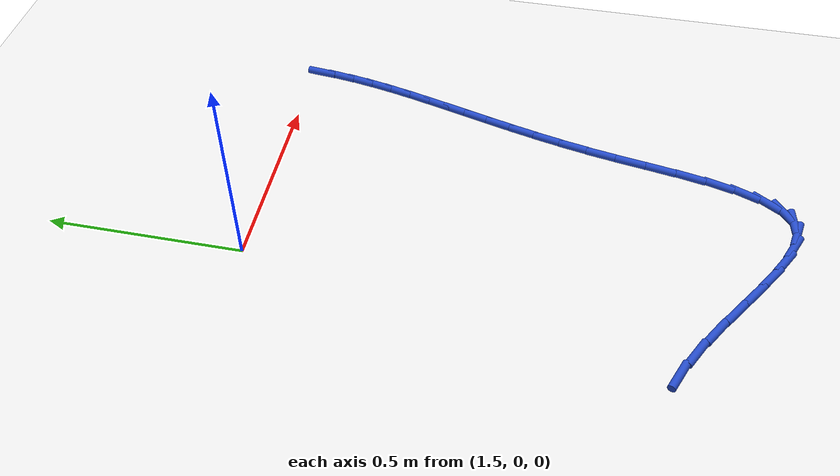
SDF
<sdf version="1.6">
 <world name="default">
  <model name="ground_plane">
   <static>1</static>
   <link name="link">
    <collision name="collision">
     <geometry><plane><normal>0 0 1</normal><size>100 100</size></plane></geometry>
     <surface><friction><ode><mu>100</mu><mu2>50</mu2></ode></friction></surface>
    </collision>
    <visual name="visual">
     <cast_shadows>0</cast_shadows>
     <geometry><plane><normal>0 0 1</normal><size>100 100</size></plane></geometry>
     <material>
      <script><uri>file://media/materials/scripts/gazebo.material</uri><name>Gazebo/WhiteGlow</name></script>
     </material>
    </visual>
   </link>
  </model>
  <model name="line">
   <link name="link_60">
    <pose>2.181140795501433 -0.02252471310258227 0.01 0 1.57 1.4633317165275757</pose>
    <collision name="collision">
     <geometry><cylinder><radius>0.01</radius><length>0.08</length></cylinder></geometry>
    </collision>
    <visual name="visual">
     <material>
      <script><name>Gazebo/Blue</name><uri>file://media/materials/scripts/gazebo.material</uri></script>
     </material>
     <geometry><cylinder><radius>0.01</radius><length>0.08</length></cylinder></geometry>
    </visual>
   </link>
   <link name="link_61">
    <pose>2.1748697062769824 -0.08065482446118027 0.01 0 1.57 1.4181907577851511</pose>
    <collision name="collision">
     <geometry><cylinder><radius>0.01</radius><length>0.08</length></cylinder></geometry>
    </collision>
    <visual name="visual">
     <material>
      <script><name>Gazebo/Blue</name><uri>file://media/materials/scripts/gazebo.material</uri></script>
     </material>
     <geometry><cylinder><radius>0.01</radius><length>0.08</length></cylinder></geometry>
    </visual>
   </link>
   <link name="link_62">
    <pose>2.1660161643041604 -0.13821960820725804 0.01 0 1.57 1.3795611524251208</pose>
    <collision name="collision">
     <geometry><cylinder><radius>0.01</radius><length>0.08</length></cylinder></geometry>
    </collision>
    <visual name="visual">
     <material>
      <script><name>Gazebo/Blue</name><uri>file://media/materials/scripts/gazebo.material</uri></script>
     </material>
     <geometry><cylinder><radius>0.01</radius><length>0.08</length></cylinder></geometry>
    </visual>
   </link>
   <link name="link_63">
    <pose>2.154916022332538 -0.1955547554681321 0.01 0 1.57 1.34804705477312</pose>
    <collision name="collision">
     <geometry><cylinder><radius>0.01</radius><length>0.08</length></cylinder></geometry>
    </collision>
    <visual name="visual">
     <material>
      <script><name>Gazebo/Blue</name><uri>file://media/materials/scripts/gazebo.material</uri></script>
     </material>
     <geometry><cylinder><radius>0.01</radius><length>0.08</length></cylinder></geometry>
    </visual>
   </link>
   <link name="link_64">
    <pose>2.1419051331116887 -0.2529959573711168 0.01 0 1.57 1.323947879787584</pose>
    <collision name="collision">
     <geometry><cylinder><radius>0.01</radius><length>0.08</length></cylinder></geometry>
    </collision>
    <visual name="visual">
     <material>
      <script><name>Gazebo/Blue</name><uri>file://media/materials/scripts/gazebo.material</uri></script>
     </material>
     <geometry><cylinder><radius>0.01</radius><length>0.08</length></cylinder></geometry>
    </visual>
   </link>
   <link name="link_65">
    <pose>2.1273193493911826 -0.31087890504352844 0.01 0 1.57 1.3072986620710507</pose>
    <collision name="collision">
     <geometry><cylinder><radius>0.01</radius><length>0.08</length></cylinder></geometry>
    </collision>
    <visual name="visual">
     <material>
      <script><name>Gazebo/Blue</name><uri>file://media/materials/scripts/gazebo.material</uri></script>
     </material>
     <geometry><cylinder><radius>0.01</radius><length>0.08</length></cylinder></geometry>
    </visual>
   </link>
   <link name="link_66">
    <pose>2.111494523920593 -0.3695392896126837 0.01 0 1.57 1.2979205651658097</pose>
    <collision name="collision">
     <geometry><cylinder><radius>0.01</radius><length>0.08</length></cylinder></geometry>
    </collision>
    <visual name="visual">
     <material>
      <script><name>Gazebo/Blue</name><uri>file://media/materials/scripts/gazebo.material</uri></script>
     </material>
     <geometry><cylinder><radius>0.01</radius><length>0.08</length></cylinder></geometry>
    </visual>
   </link>
   <link name="link_67">
    <pose>2.094766509449491 -0.4293128022058966 0.01 0 1.57 1.2954702470321493</pose>
    <collision name="collision">
     <geometry><cylinder><radius>0.01</radius><length>0.08</length></cylinder></geometry>
    </collision>
    <visual name="visual">
     <material>
      <script><name>Gazebo/Blue</name><uri>file://media/materials/scripts/gazebo.material</uri></script>
     </material>
     <geometry><cylinder><radius>0.01</radius><length>0.08</length></cylinder></geometry>
    </visual>
   </link>
   <link name="link_68">
    <pose>2.077471158727449 -0.49053513395048387 0.01 0 1.57 1.2994821319153929</pose>
    <collision name="collision">
     <geometry><cylinder><radius>0.01</radius><length>0.08</length></cylinder></geometry>
    </collision>
    <visual name="visual">
     <material>
      <script><name>Gazebo/Blue</name><uri>file://media/materials/scripts/gazebo.material</uri></script>
     </material>
     <geometry><cylinder><radius>0.01</radius><length>0.08</length></cylinder></geometry>
    </visual>
   </link>
   <link name="link_69">
    <pose>2.0599443245040394 -0.5535419759737612 0.01 0 1.57 1.3094020333732914</pose>
    <collision name="collision">
     <geometry><cylinder><radius>0.01</radius><length>0.08</length></cylinder></geometry>
    </collision>
    <visual name="visual">
     <material>
      <script><name>Gazebo/Blue</name><uri>file://media/materials/scripts/gazebo.material</uri></script>
     </material>
     <geometry><cylinder><radius>0.01</radius><length>0.08</length></cylinder></geometry>
    </visual>
   </link>
   <link name="link_70">
    <pose>2.0425218595288333 -0.6186690194030451 0.01 0 1.57 1.3246132817177398</pose>
    <collision name="collision">
     <geometry><cylinder><radius>0.01</radius><length>0.08</length></cylinder></geometry>
    </collision>
    <visual name="visual">
     <material>
      <script><name>Gazebo/Blue</name><uri>file://media/materials/scripts/gazebo.material</uri></script>
     </material>
     <geometry><cylinder><radius>0.01</radius><length>0.08</length></cylinder></geometry>
    </visual>
   </link>
   <link name="link_71">
    <pose>2.0255396165514035 -0.6862519553656496 0.01 0 1.57 1.344457652804397</pose>
    <collision name="collision">
     <geometry><cylinder><radius>0.01</radius><length>0.08</length></cylinder></geometry>
    </collision>
    <visual name="visual">
     <material>
      <script><name>Gazebo/Blue</name><uri>file://media/materials/scripts/gazebo.material</uri></script>
     </material>
     <geometry><cylinder><radius>0.01</radius><length>0.08</length></cylinder></geometry>
    </visual>
   </link>
   <link name="link_72">
    <pose>2.009333448321321 -0.7566264749888914 0.01 0 1.57 1.36825341899951</pose>
    <collision name="collision">
     <geometry><cylinder><radius>0.01</radius><length>0.08</length></cylinder></geometry>
    </collision>
    <visual name="visual">
     <material>
      <script><name>Gazebo/Blue</name><uri>file://media/materials/scripts/gazebo.material</uri></script>
     </material>
     <geometry><cylinder><radius>0.01</radius><length>0.08</length></cylinder></geometry>
    </visual>
   </link>
   <link name="link_73">
    <pose>1.994239207588159 -0.8301282694000863 0.01 0 1.57 1.3929532772822404</pose>
    <collision name="collision">
     <geometry><cylinder><radius>0.01</radius><length>0.08</length></cylinder></geometry>
    </collision>
    <visual name="visual">
     <material>
      <script><name>Gazebo/Blue</name><uri>file://media/materials/scripts/gazebo.material</uri></script>
     </material>
     <geometry><cylinder><radius>0.01</radius><length>0.08</length></cylinder></geometry>
    </visual>
   </link>
   <link name="link_74">
    <pose>1.9804604642031816 -0.9067867095791181 0.01 0 1.57 1.4031117757198717</pose>
    <collision name="collision">
     <geometry><cylinder><radius>0.01</radius><length>0.08</length></cylinder></geometry>
    </collision>
    <visual name="visual">
     <material>
      <script><name>Gazebo/Blue</name><uri>file://media/materials/scripts/gazebo.material</uri></script>
     </material>
     <geometry><cylinder><radius>0.01</radius><length>0.08</length></cylinder></geometry>
    </visual>
   </link>
   <link name="link_75">
    <pose>1.967298531674401 -0.9845418616930368 0.01 0 1.57 1.3932784947089318</pose>
    <collision name="collision">
     <geometry><cylinder><radius>0.01</radius><length>0.08</length></cylinder></geometry>
    </collision>
    <visual name="visual">
     <material>
      <script><name>Gazebo/Blue</name><uri>file://media/materials/scripts/gazebo.material</uri></script>
     </material>
     <geometry><cylinder><radius>0.01</radius><length>0.08</length></cylinder></geometry>
    </visual>
   </link>
   <link name="link_76">
    <pose>1.9536780568098038 -1.0604615657892562 0.01 0 1.57 1.3609211380396815</pose>
    <collision name="collision">
     <geometry><cylinder><radius>0.01</radius><length>0.08</length></cylinder></geometry>
    </collision>
    <visual name="visual">
     <material>
      <script><name>Gazebo/Blue</name><uri>file://media/materials/scripts/gazebo.material</uri></script>
     </material>
     <geometry><cylinder><radius>0.01</radius><length>0.08</length></cylinder></geometry>
    </visual>
   </link>
   <link name="link_77">
    <pose>1.9385224290864924 -1.1316107503840165 0.01 0 1.57 1.2977410734919888</pose>
    <collision name="collision">
     <geometry><cylinder><radius>0.01</radius><length>0.08</length></cylinder></geometry>
    </collision>
    <visual name="visual">
     <material>
      <script><name>Gazebo/Blue</name><uri>file://media/materials/scripts/gazebo.material</uri></script>
     </material>
     <geometry><cylinder><radius>0.01</radius><length>0.08</length></cylinder></geometry>
    </visual>
   </link>
   <link name="link_78">
    <pose>1.9207550379815679 -1.19505434399356 0.01 0 1.57 1.184839302992296</pose>
    <collision name="collision">
     <geometry><cylinder><radius>0.01</radius><length>0.08</length></cylinder></geometry>
    </collision>
    <visual name="visual">
     <material>
      <script><name>Gazebo/Blue</name><uri>file://media/materials/scripts/gazebo.material</uri></script>
     </material>
     <geometry><cylinder><radius>0.01</radius><length>0.08</length></cylinder></geometry>
    </visual>
   </link>
   <link name="link_79">
    <pose>1.8992992729721336 -1.2478572751341255 0.01 0 1.57 0.9815719382979051</pose>
    <collision name="collision">
     <geometry><cylinder><radius>0.01</radius><length>0.08</length></cylinder></geometry>
    </collision>
    <visual name="visual">
     <material>
      <script><name>Gazebo/Blue</name><uri>file://media/materials/scripts/gazebo.material</uri></script>
     </material>
     <geometry><cylinder><radius>0.01</radius><length>0.08</length></cylinder></geometry>
    </visual>
   </link>
   <link name="link_80">
    <pose>1.873078523535291 -1.287084472321954 0.01 0 1.57 0.6164304866969939</pose>
    <collision name="collision">
     <geometry><cylinder><radius>0.01</radius><length>0.08</length></cylinder></geometry>
    </collision>
    <visual name="visual">
     <material>
      <script><name>Gazebo/Blue</name><uri>file://media/materials/scripts/gazebo.material</uri></script>
     </material>
     <geometry><cylinder><radius>0.01</radius><length>0.08</length></cylinder></geometry>
    </visual>
   </link>
   <link name="link_81">
    <pose>1.8410163973403098 -1.3098015758973987 0.01 0 1.57 0.11749475467713097</pose>
    <collision name="collision">
     <geometry><cylinder><radius>0.01</radius><length>0.08</length></cylinder></geometry>
    </collision>
    <visual name="visual">
     <material>
      <script><name>Gazebo/Blue</name><uri>file://media/materials/scripts/gazebo.material</uri></script>
     </material>
     <geometry><cylinder><radius>0.01</radius><length>0.08</length></cylinder></geometry>
    </visual>
   </link>
   <link name="link_82">
    <pose>1.802429494321183 -1.314356313326229 0.01 0 1.57 -0.2488433460933764</pose>
    <collision name="collision">
     <geometry><cylinder><radius>0.01</radius><length>0.08</length></cylinder></geometry>
    </collision>
    <visual name="visual">
     <material>
      <script><name>Gazebo/Blue</name><uri>file://media/materials/scripts/gazebo.material</uri></script>
     </material>
     <geometry><cylinder><radius>0.01</radius><length>0.08</length></cylinder></geometry>
    </visual>
   </link>
   <link name="link_83">
    <pose>1.757838732154949 -1.303025345063187 0.01 0 1.57 -0.451830941265271</pose>
    <collision name="collision">
     <geometry><cylinder><radius>0.01</radius><length>0.08</length></cylinder></geometry>
    </collision>
    <visual name="visual">
     <material>
      <script><name>Gazebo/Blue</name><uri>file://media/materials/scripts/gazebo.material</uri></script>
     </material>
     <geometry><cylinder><radius>0.01</radius><length>0.08</length></cylinder></geometry>
    </visual>
   </link>
   <link name="link_84">
    <pose>1.7079949416058668 -1.278835393677588 0.01 0 1.57 -0.5593395536663632</pose>
    <collision name="collision">
     <geometry><cylinder><radius>0.01</radius><length>0.08</length></cylinder></geometry>
    </collision>
    <visual name="visual">
     <material>
      <script><name>Gazebo/Blue</name><uri>file://media/materials/scripts/gazebo.material</uri></script>
     </material>
     <geometry><cylinder><radius>0.01</radius><length>0.08</length></cylinder></geometry>
    </visual>
   </link>
   <link name="link_85">
    <pose>1.6536489534381937 -1.2448131817387476 0.01 0 1.57 -0.612567302138997</pose>
    <collision name="collision">
     <geometry><cylinder><radius>0.01</radius><length>0.08</length></cylinder></geometry>
    </collision>
    <visual name="visual">
     <material>
      <script><name>Gazebo/Blue</name><uri>file://media/materials/scripts/gazebo.material</uri></script>
     </material>
     <geometry><cylinder><radius>0.01</radius><length>0.08</length></cylinder></geometry>
    </visual>
   </link>
   <link name="link_86">
    <pose>1.59555159841619 -1.2039854318159824 0.01 0 1.57 -0.630632260613221</pose>
    <collision name="collision">
     <geometry><cylinder><radius>0.01</radius><length>0.08</length></cylinder></geometry>
    </collision>
    <visual name="visual">
     <material>
      <script><name>Gazebo/Blue</name><uri>file://media/materials/scripts/gazebo.material</uri></script>
     </material>
     <geometry><cylinder><radius>0.01</radius><length>0.08</length></cylinder></geometry>
    </visual>
   </link>
   <link name="link_87">
    <pose>1.5344537073041131 -1.1593788664786078 0.01 0 1.57 -0.6214022675964831</pose>
    <collision name="collision">
     <geometry><cylinder><radius>0.01</radius><length>0.08</length></cylinder></geometry>
    </collision>
    <visual name="visual">
     <material>
      <script><name>Gazebo/Blue</name><uri>file://media/materials/scripts/gazebo.material</uri></script>
     </material>
     <geometry><cylinder><radius>0.01</radius><length>0.08</length></cylinder></geometry>
    </visual>
   </link>
   <link name="link_88">
    <pose>1.4711061108662213 -1.1140202082959396 0.01 0 1.57 -0.5864320850977754</pose>
    <collision name="collision">
     <geometry><cylinder><radius>0.01</radius><length>0.08</length></cylinder></geometry>
    </collision>
    <visual name="visual">
     <material>
      <script><name>Gazebo/Blue</name><uri>file://media/materials/scripts/gazebo.material</uri></script>
     </material>
     <geometry><cylinder><radius>0.01</radius><length>0.08</length></cylinder></geometry>
    </visual>
   </link>
   <link name="link_89">
    <pose>1.406259639866772 -1.070936179837293 0.01 0 1.57 -0.5225885573293259</pose>
    <collision name="collision">
     <geometry><cylinder><radius>0.01</radius><length>0.08</length></cylinder></geometry>
    </collision>
    <visual name="visual">
     <material>
      <script><name>Gazebo/Blue</name><uri>file://media/materials/scripts/gazebo.material</uri></script>
     </material>
     <geometry><cylinder><radius>0.01</radius><length>0.08</length></cylinder></geometry>
    </visual>
   </link>
   <link name="link_90">
    <pose>1.3406651196196202 -1.0331534674869984 0.01 0 1.57 -0.4310933272131965</pose>
    <collision name="collision">
     <geometry><cylinder><radius>0.01</radius><length>0.08</length></cylinder></geometry>
    </collision>
    <visual name="visual">
     <material>
      <script><name>Gazebo/Blue</name><uri>file://media/materials/scripts/gazebo.material</uri></script>
     </material>
     <geometry><cylinder><radius>0.01</radius><length>0.08</length></cylinder></geometry>
    </visual>
   </link>
  </model>
 </world>
</sdf>
